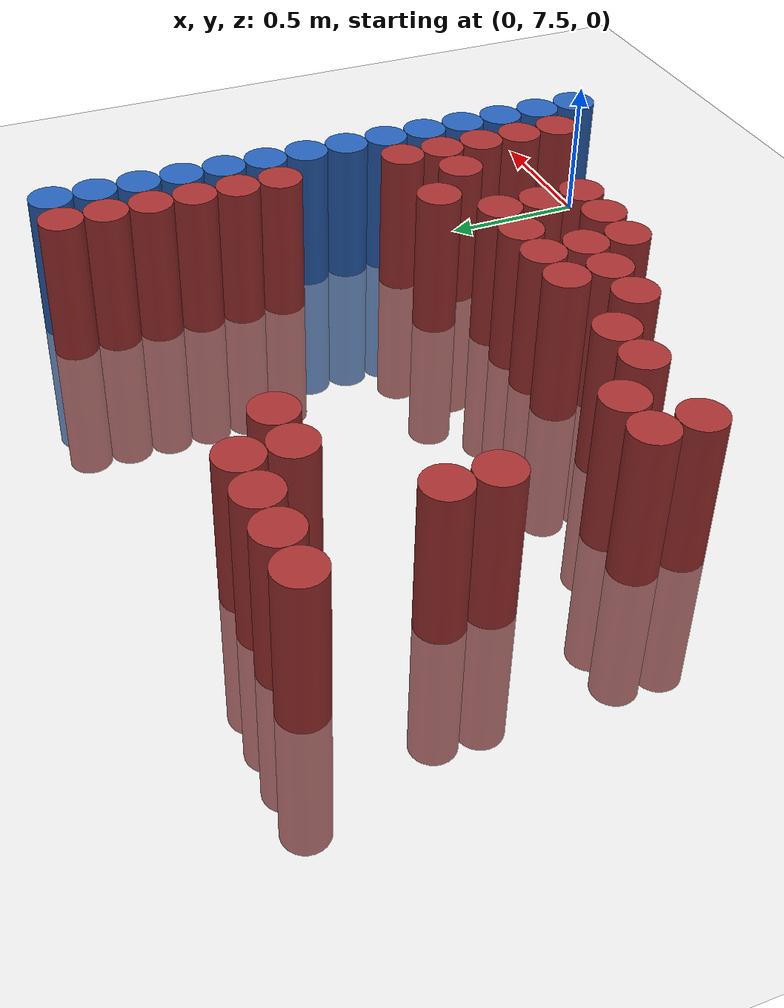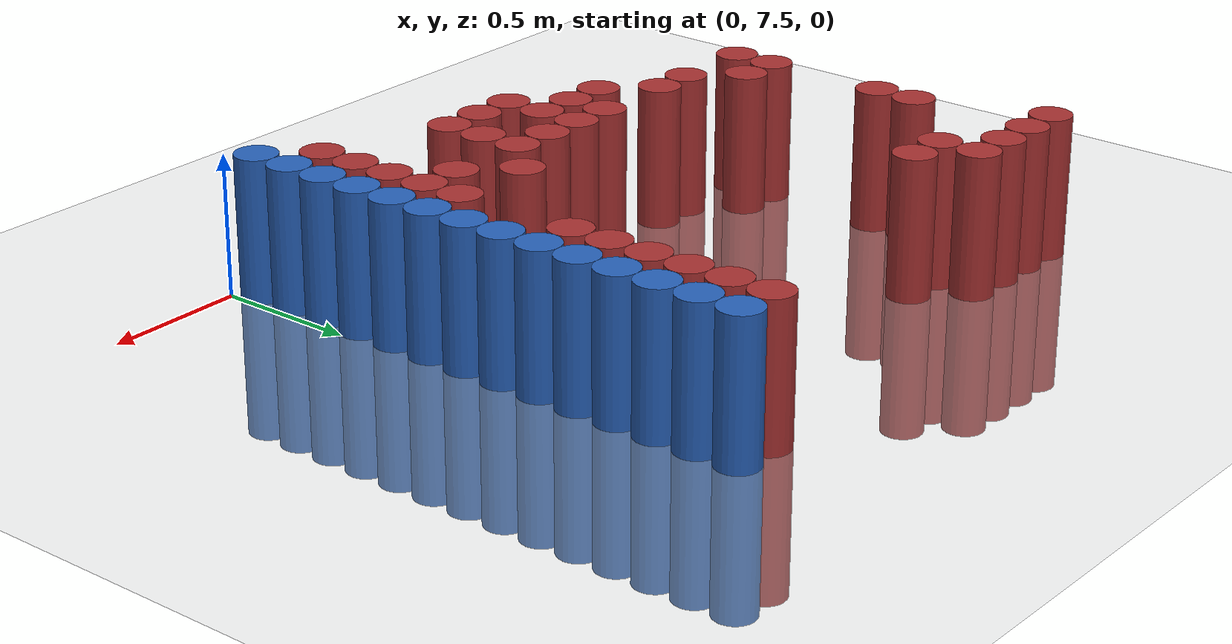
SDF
<sdf version="1.6">
 <world name="default">
  <model name="ground_plane">
   <static>1</static>
   <link name="link">
    <collision name="collision">
     <geometry><plane><normal>0 0 1</normal><size>100 100</size></plane></geometry>
     <surface><friction><ode><mu>100</mu><mu2>50</mu2></ode></friction></surface>
    </collision>
    <visual name="visual">
     <cast_shadows>0</cast_shadows>
     <geometry><plane><normal>0 0 1</normal><size>100 100</size></plane></geometry>
     <material>
      <script><uri>file://media/materials/scripts/gazebo.material</uri><name>Gazebo/Grey</name></script>
     </material>
    </visual>
   </link>
  </model>
  <model name="unit_cylinder_225">
   <static>1</static>
   <pose>-2.025000 9.375000 0.000000 0.000000 0.000000 0.000000</pose>
   <link name="link">
    <inertial>
     <mass>1</mass>
     <inertia><ixx>0.145833</ixx><ixy>0</ixy><ixz>0</ixz><iyy>0.145833</iyy><iyz>0</iyz><izz>0.125</izz></inertia>
    </inertial>
    <collision name="collision">
     <geometry><cylinder><radius>0.075000</radius><length>1</length></cylinder></geometry>
    </collision>
    <visual name="visual">
     <geometry><cylinder><radius>0.075000</radius><length>1</length></cylinder></geometry>
     <material>
      <ambient>0.648000 0.192000 0.192000 1</ambient>
      <diffuse>0.648000 0.192000 0.192000 1</diffuse>
     </material>
     <material>
      <script><name>Gazebo/Grey</name><uri>file://media/materials/scripts/gazebo.material</uri></script>
     </material>
    </visual>
   </link>
  </model>
  <model name="unit_cylinder_228">
   <static>1</static>
   <pose>-1.875000 8.175000 0.000000 0.000000 0.000000 0.000000</pose>
   <link name="link">
    <inertial>
     <mass>1</mass>
     <inertia><ixx>0.145833</ixx><ixy>0</ixy><ixz>0</ixz><iyy>0.145833</iyy><iyz>0</iyz><izz>0.125</izz></inertia>
    </inertial>
    <collision name="collision">
     <geometry><cylinder><radius>0.075000</radius><length>1</length></cylinder></geometry>
    </collision>
    <visual name="visual">
     <geometry><cylinder><radius>0.075000</radius><length>1</length></cylinder></geometry>
     <material>
      <ambient>0.648000 0.192000 0.192000 1</ambient>
      <diffuse>0.648000 0.192000 0.192000 1</diffuse>
     </material>
     <material>
      <script><name>Gazebo/Grey</name><uri>file://media/materials/scripts/gazebo.material</uri></script>
     </material>
    </visual>
   </link>
  </model>
  <model name="unit_cylinder_229">
   <static>1</static>
   <pose>-1.875000 8.325000 0.000000 0.000000 0.000000 0.000000</pose>
   <link name="link">
    <inertial>
     <mass>1</mass>
     <inertia><ixx>0.145833</ixx><ixy>0</ixy><ixz>0</ixz><iyy>0.145833</iyy><iyz>0</iyz><izz>0.125</izz></inertia>
    </inertial>
    <collision name="collision">
     <geometry><cylinder><radius>0.075000</radius><length>1</length></cylinder></geometry>
    </collision>
    <visual name="visual">
     <geometry><cylinder><radius>0.075000</radius><length>1</length></cylinder></geometry>
     <material>
      <ambient>0.648000 0.192000 0.192000 1</ambient>
      <diffuse>0.648000 0.192000 0.192000 1</diffuse>
     </material>
     <material>
      <script><name>Gazebo/Grey</name><uri>file://media/materials/scripts/gazebo.material</uri></script>
     </material>
    </visual>
   </link>
  </model>
  <model name="unit_cylinder_230">
   <static>1</static>
   <pose>-1.875000 8.775000 0.000000 0.000000 0.000000 0.000000</pose>
   <link name="link">
    <inertial>
     <mass>1</mass>
     <inertia><ixx>0.145833</ixx><ixy>0</ixy><ixz>0</ixz><iyy>0.145833</iyy><iyz>0</iyz><izz>0.125</izz></inertia>
    </inertial>
    <collision name="collision">
     <geometry><cylinder><radius>0.075000</radius><length>1</length></cylinder></geometry>
    </collision>
    <visual name="visual">
     <geometry><cylinder><radius>0.075000</radius><length>1</length></cylinder></geometry>
     <material>
      <ambient>0.648000 0.192000 0.192000 1</ambient>
      <diffuse>0.648000 0.192000 0.192000 1</diffuse>
     </material>
     <material>
      <script><name>Gazebo/Grey</name><uri>file://media/materials/scripts/gazebo.material</uri></script>
     </material>
    </visual>
   </link>
  </model>
  <model name="unit_cylinder_231">
   <static>1</static>
   <pose>-1.875000 8.925000 0.000000 0.000000 0.000000 0.000000</pose>
   <link name="link">
    <inertial>
     <mass>1</mass>
     <inertia><ixx>0.145833</ixx><ixy>0</ixy><ixz>0</ixz><iyy>0.145833</iyy><iyz>0</iyz><izz>0.125</izz></inertia>
    </inertial>
    <collision name="collision">
     <geometry><cylinder><radius>0.075000</radius><length>1</length></cylinder></geometry>
    </collision>
    <visual name="visual">
     <geometry><cylinder><radius>0.075000</radius><length>1</length></cylinder></geometry>
     <material>
      <ambient>0.648000 0.192000 0.192000 1</ambient>
      <diffuse>0.648000 0.192000 0.192000 1</diffuse>
     </material>
     <material>
      <script><name>Gazebo/Grey</name><uri>file://media/materials/scripts/gazebo.material</uri></script>
     </material>
    </visual>
   </link>
  </model>
  <model name="unit_cylinder_232">
   <static>1</static>
   <pose>-1.875000 9.375000 0.000000 0.000000 0.000000 0.000000</pose>
   <link name="link">
    <inertial>
     <mass>1</mass>
     <inertia><ixx>0.145833</ixx><ixy>0</ixy><ixz>0</ixz><iyy>0.145833</iyy><iyz>0</iyz><izz>0.125</izz></inertia>
    </inertial>
    <collision name="collision">
     <geometry><cylinder><radius>0.075000</radius><length>1</length></cylinder></geometry>
    </collision>
    <visual name="visual">
     <geometry><cylinder><radius>0.075000</radius><length>1</length></cylinder></geometry>
     <material>
      <ambient>0.648000 0.192000 0.192000 1</ambient>
      <diffuse>0.648000 0.192000 0.192000 1</diffuse>
     </material>
     <material>
      <script><name>Gazebo/Grey</name><uri>file://media/materials/scripts/gazebo.material</uri></script>
     </material>
    </visual>
   </link>
  </model>
  <model name="unit_cylinder_240">
   <static>1</static>
   <pose>-1.725000 8.325000 0.000000 0.000000 0.000000 0.000000</pose>
   <link name="link">
    <inertial>
     <mass>1</mass>
     <inertia><ixx>0.145833</ixx><ixy>0</ixy><ixz>0</ixz><iyy>0.145833</iyy><iyz>0</iyz><izz>0.125</izz></inertia>
    </inertial>
    <collision name="collision">
     <geometry><cylinder><radius>0.075000</radius><length>1</length></cylinder></geometry>
    </collision>
    <visual name="visual">
     <geometry><cylinder><radius>0.075000</radius><length>1</length></cylinder></geometry>
     <material>
      <ambient>0.648000 0.192000 0.192000 1</ambient>
      <diffuse>0.648000 0.192000 0.192000 1</diffuse>
     </material>
     <material>
      <script><name>Gazebo/Grey</name><uri>file://media/materials/scripts/gazebo.material</uri></script>
     </material>
    </visual>
   </link>
  </model>
  <model name="unit_cylinder_241">
   <static>1</static>
   <pose>-1.725000 9.375000 0.000000 0.000000 0.000000 0.000000</pose>
   <link name="link">
    <inertial>
     <mass>1</mass>
     <inertia><ixx>0.145833</ixx><ixy>0</ixy><ixz>0</ixz><iyy>0.145833</iyy><iyz>0</iyz><izz>0.125</izz></inertia>
    </inertial>
    <collision name="collision">
     <geometry><cylinder><radius>0.075000</radius><length>1</length></cylinder></geometry>
    </collision>
    <visual name="visual">
     <geometry><cylinder><radius>0.075000</radius><length>1</length></cylinder></geometry>
     <material>
      <ambient>0.648000 0.192000 0.192000 1</ambient>
      <diffuse>0.648000 0.192000 0.192000 1</diffuse>
     </material>
     <material>
      <script><name>Gazebo/Grey</name><uri>file://media/materials/scripts/gazebo.material</uri></script>
     </material>
    </visual>
   </link>
  </model>
  <model name="unit_cylinder_253">
   <static>1</static>
   <pose>-1.575000 8.175000 0.000000 0.000000 0.000000 0.000000</pose>
   <link name="link">
    <inertial>
     <mass>1</mass>
     <inertia><ixx>0.145833</ixx><ixy>0</ixy><ixz>0</ixz><iyy>0.145833</iyy><iyz>0</iyz><izz>0.125</izz></inertia>
    </inertial>
    <collision name="collision">
     <geometry><cylinder><radius>0.075000</radius><length>1</length></cylinder></geometry>
    </collision>
    <visual name="visual">
     <geometry><cylinder><radius>0.075000</radius><length>1</length></cylinder></geometry>
     <material>
      <ambient>0.648000 0.192000 0.192000 1</ambient>
      <diffuse>0.648000 0.192000 0.192000 1</diffuse>
     </material>
     <material>
      <script><name>Gazebo/Grey</name><uri>file://media/materials/scripts/gazebo.material</uri></script>
     </material>
    </visual>
   </link>
  </model>
  <model name="unit_cylinder_254">
   <static>1</static>
   <pose>-1.575000 9.225000 0.000000 0.000000 0.000000 0.000000</pose>
   <link name="link">
    <inertial>
     <mass>1</mass>
     <inertia><ixx>0.145833</ixx><ixy>0</ixy><ixz>0</ixz><iyy>0.145833</iyy><iyz>0</iyz><izz>0.125</izz></inertia>
    </inertial>
    <collision name="collision">
     <geometry><cylinder><radius>0.075000</radius><length>1</length></cylinder></geometry>
    </collision>
    <visual name="visual">
     <geometry><cylinder><radius>0.075000</radius><length>1</length></cylinder></geometry>
     <material>
      <ambient>0.648000 0.192000 0.192000 1</ambient>
      <diffuse>0.648000 0.192000 0.192000 1</diffuse>
     </material>
     <material>
      <script><name>Gazebo/Grey</name><uri>file://media/materials/scripts/gazebo.material</uri></script>
     </material>
    </visual>
   </link>
  </model>
  <model name="unit_cylinder_255">
   <static>1</static>
   <pose>-1.575000 9.375000 0.000000 0.000000 0.000000 0.000000</pose>
   <link name="link">
    <inertial>
     <mass>1</mass>
     <inertia><ixx>0.145833</ixx><ixy>0</ixy><ixz>0</ixz><iyy>0.145833</iyy><iyz>0</iyz><izz>0.125</izz></inertia>
    </inertial>
    <collision name="collision">
     <geometry><cylinder><radius>0.075000</radius><length>1</length></cylinder></geometry>
    </collision>
    <visual name="visual">
     <geometry><cylinder><radius>0.075000</radius><length>1</length></cylinder></geometry>
     <material>
      <ambient>0.648000 0.192000 0.192000 1</ambient>
      <diffuse>0.648000 0.192000 0.192000 1</diffuse>
     </material>
     <material>
      <script><name>Gazebo/Grey</name><uri>file://media/materials/scripts/gazebo.material</uri></script>
     </material>
    </visual>
   </link>
  </model>
  <model name="unit_cylinder_263">
   <static>1</static>
   <pose>-1.425000 8.175000 0.000000 0.000000 0.000000 0.000000</pose>
   <link name="link">
    <inertial>
     <mass>1</mass>
     <inertia><ixx>0.145833</ixx><ixy>0</ixy><ixz>0</ixz><iyy>0.145833</iyy><iyz>0</iyz><izz>0.125</izz></inertia>
    </inertial>
    <collision name="collision">
     <geometry><cylinder><radius>0.075000</radius><length>1</length></cylinder></geometry>
    </collision>
    <visual name="visual">
     <geometry><cylinder><radius>0.075000</radius><length>1</length></cylinder></geometry>
     <material>
      <ambient>0.648000 0.192000 0.192000 1</ambient>
      <diffuse>0.648000 0.192000 0.192000 1</diffuse>
     </material>
     <material>
      <script><name>Gazebo/Grey</name><uri>file://media/materials/scripts/gazebo.material</uri></script>
     </material>
    </visual>
   </link>
  </model>
  <model name="unit_cylinder_264">
   <static>1</static>
   <pose>-1.425000 9.225000 0.000000 0.000000 0.000000 0.000000</pose>
   <link name="link">
    <inertial>
     <mass>1</mass>
     <inertia><ixx>0.145833</ixx><ixy>0</ixy><ixz>0</ixz><iyy>0.145833</iyy><iyz>0</iyz><izz>0.125</izz></inertia>
    </inertial>
    <collision name="collision">
     <geometry><cylinder><radius>0.075000</radius><length>1</length></cylinder></geometry>
    </collision>
    <visual name="visual">
     <geometry><cylinder><radius>0.075000</radius><length>1</length></cylinder></geometry>
     <material>
      <ambient>0.648000 0.192000 0.192000 1</ambient>
      <diffuse>0.648000 0.192000 0.192000 1</diffuse>
     </material>
     <material>
      <script><name>Gazebo/Grey</name><uri>file://media/materials/scripts/gazebo.material</uri></script>
     </material>
    </visual>
   </link>
  </model>
  <model name="unit_cylinder_267">
   <static>1</static>
   <pose>-1.275000 8.025000 0.000000 0.000000 0.000000 0.000000</pose>
   <link name="link">
    <inertial>
     <mass>1</mass>
     <inertia><ixx>0.145833</ixx><ixy>0</ixy><ixz>0</ixz><iyy>0.145833</iyy><iyz>0</iyz><izz>0.125</izz></inertia>
    </inertial>
    <collision name="collision">
     <geometry><cylinder><radius>0.075000</radius><length>1</length></cylinder></geometry>
    </collision>
    <visual name="visual">
     <geometry><cylinder><radius>0.075000</radius><length>1</length></cylinder></geometry>
     <material>
      <ambient>0.648000 0.192000 0.192000 1</ambient>
      <diffuse>0.648000 0.192000 0.192000 1</diffuse>
     </material>
     <material>
      <script><name>Gazebo/Grey</name><uri>file://media/materials/scripts/gazebo.material</uri></script>
     </material>
    </visual>
   </link>
  </model>
  <model name="unit_cylinder_270">
   <static>1</static>
   <pose>-1.125000 8.025000 0.000000 0.000000 0.000000 0.000000</pose>
   <link name="link">
    <inertial>
     <mass>1</mass>
     <inertia><ixx>0.145833</ixx><ixy>0</ixy><ixz>0</ixz><iyy>0.145833</iyy><iyz>0</iyz><izz>0.125</izz></inertia>
    </inertial>
    <collision name="collision">
     <geometry><cylinder><radius>0.075000</radius><length>1</length></cylinder></geometry>
    </collision>
    <visual name="visual">
     <geometry><cylinder><radius>0.075000</radius><length>1</length></cylinder></geometry>
     <material>
      <ambient>0.648000 0.192000 0.192000 1</ambient>
      <diffuse>0.648000 0.192000 0.192000 1</diffuse>
     </material>
     <material>
      <script><name>Gazebo/Grey</name><uri>file://media/materials/scripts/gazebo.material</uri></script>
     </material>
    </visual>
   </link>
  </model>
  <model name="unit_cylinder_271">
   <static>1</static>
   <pose>-1.125000 8.175000 0.000000 0.000000 0.000000 0.000000</pose>
   <link name="link">
    <inertial>
     <mass>1</mass>
     <inertia><ixx>0.145833</ixx><ixy>0</ixy><ixz>0</ixz><iyy>0.145833</iyy><iyz>0</iyz><izz>0.125</izz></inertia>
    </inertial>
    <collision name="collision">
     <geometry><cylinder><radius>0.075000</radius><length>1</length></cylinder></geometry>
    </collision>
    <visual name="visual">
     <geometry><cylinder><radius>0.075000</radius><length>1</length></cylinder></geometry>
     <material>
      <ambient>0.648000 0.192000 0.192000 1</ambient>
      <diffuse>0.648000 0.192000 0.192000 1</diffuse>
     </material>
     <material>
      <script><name>Gazebo/Grey</name><uri>file://media/materials/scripts/gazebo.material</uri></script>
     </material>
    </visual>
   </link>
  </model>
  <model name="unit_cylinder_273">
   <static>1</static>
   <pose>-0.975000 7.875000 0.000000 0.000000 0.000000 0.000000</pose>
   <link name="link">
    <inertial>
     <mass>1</mass>
     <inertia><ixx>0.145833</ixx><ixy>0</ixy><ixz>0</ixz><iyy>0.145833</iyy><iyz>0</iyz><izz>0.125</izz></inertia>
    </inertial>
    <collision name="collision">
     <geometry><cylinder><radius>0.075000</radius><length>1</length></cylinder></geometry>
    </collision>
    <visual name="visual">
     <geometry><cylinder><radius>0.075000</radius><length>1</length></cylinder></geometry>
     <material>
      <ambient>0.648000 0.192000 0.192000 1</ambient>
      <diffuse>0.648000 0.192000 0.192000 1</diffuse>
     </material>
     <material>
      <script><name>Gazebo/Grey</name><uri>file://media/materials/scripts/gazebo.material</uri></script>
     </material>
    </visual>
   </link>
  </model>
  <model name="unit_cylinder_274">
   <static>1</static>
   <pose>-0.975000 8.025000 0.000000 0.000000 0.000000 0.000000</pose>
   <link name="link">
    <inertial>
     <mass>1</mass>
     <inertia><ixx>0.145833</ixx><ixy>0</ixy><ixz>0</ixz><iyy>0.145833</iyy><iyz>0</iyz><izz>0.125</izz></inertia>
    </inertial>
    <collision name="collision">
     <geometry><cylinder><radius>0.075000</radius><length>1</length></cylinder></geometry>
    </collision>
    <visual name="visual">
     <geometry><cylinder><radius>0.075000</radius><length>1</length></cylinder></geometry>
     <material>
      <ambient>0.648000 0.192000 0.192000 1</ambient>
      <diffuse>0.648000 0.192000 0.192000 1</diffuse>
     </material>
     <material>
      <script><name>Gazebo/Grey</name><uri>file://media/materials/scripts/gazebo.material</uri></script>
     </material>
    </visual>
   </link>
  </model>
  <model name="unit_cylinder_275">
   <static>1</static>
   <pose>-0.975000 8.175000 0.000000 0.000000 0.000000 0.000000</pose>
   <link name="link">
    <inertial>
     <mass>1</mass>
     <inertia><ixx>0.145833</ixx><ixy>0</ixy><ixz>0</ixz><iyy>0.145833</iyy><iyz>0</iyz><izz>0.125</izz></inertia>
    </inertial>
    <collision name="collision">
     <geometry><cylinder><radius>0.075000</radius><length>1</length></cylinder></geometry>
    </collision>
    <visual name="visual">
     <geometry><cylinder><radius>0.075000</radius><length>1</length></cylinder></geometry>
     <material>
      <ambient>0.648000 0.192000 0.192000 1</ambient>
      <diffuse>0.648000 0.192000 0.192000 1</diffuse>
     </material>
     <material>
      <script><name>Gazebo/Grey</name><uri>file://media/materials/scripts/gazebo.material</uri></script>
     </material>
    </visual>
   </link>
  </model>
  <model name="unit_cylinder_280">
   <static>1</static>
   <pose>-0.825000 7.875000 0.000000 0.000000 0.000000 0.000000</pose>
   <link name="link">
    <inertial>
     <mass>1</mass>
     <inertia><ixx>0.145833</ixx><ixy>0</ixy><ixz>0</ixz><iyy>0.145833</iyy><iyz>0</iyz><izz>0.125</izz></inertia>
    </inertial>
    <collision name="collision">
     <geometry><cylinder><radius>0.075000</radius><length>1</length></cylinder></geometry>
    </collision>
    <visual name="visual">
     <geometry><cylinder><radius>0.075000</radius><length>1</length></cylinder></geometry>
     <material>
      <ambient>0.648000 0.192000 0.192000 1</ambient>
      <diffuse>0.648000 0.192000 0.192000 1</diffuse>
     </material>
     <material>
      <script><name>Gazebo/Grey</name><uri>file://media/materials/scripts/gazebo.material</uri></script>
     </material>
    </visual>
   </link>
  </model>
  <model name="unit_cylinder_281">
   <static>1</static>
   <pose>-0.825000 8.175000 0.000000 0.000000 0.000000 0.000000</pose>
   <link name="link">
    <inertial>
     <mass>1</mass>
     <inertia><ixx>0.145833</ixx><ixy>0</ixy><ixz>0</ixz><iyy>0.145833</iyy><iyz>0</iyz><izz>0.125</izz></inertia>
    </inertial>
    <collision name="collision">
     <geometry><cylinder><radius>0.075000</radius><length>1</length></cylinder></geometry>
    </collision>
    <visual name="visual">
     <geometry><cylinder><radius>0.075000</radius><length>1</length></cylinder></geometry>
     <material>
      <ambient>0.648000 0.192000 0.192000 1</ambient>
      <diffuse>0.648000 0.192000 0.192000 1</diffuse>
     </material>
     <material>
      <script><name>Gazebo/Grey</name><uri>file://media/materials/scripts/gazebo.material</uri></script>
     </material>
    </visual>
   </link>
  </model>
  <model name="unit_cylinder_285">
   <static>1</static>
   <pose>-0.675000 7.875000 0.000000 0.000000 0.000000 0.000000</pose>
   <link name="link">
    <inertial>
     <mass>1</mass>
     <inertia><ixx>0.145833</ixx><ixy>0</ixy><ixz>0</ixz><iyy>0.145833</iyy><iyz>0</iyz><izz>0.125</izz></inertia>
    </inertial>
    <collision name="collision">
     <geometry><cylinder><radius>0.075000</radius><length>1</length></cylinder></geometry>
    </collision>
    <visual name="visual">
     <geometry><cylinder><radius>0.075000</radius><length>1</length></cylinder></geometry>
     <material>
      <ambient>0.648000 0.192000 0.192000 1</ambient>
      <diffuse>0.648000 0.192000 0.192000 1</diffuse>
     </material>
     <material>
      <script><name>Gazebo/Grey</name><uri>file://media/materials/scripts/gazebo.material</uri></script>
     </material>
    </visual>
   </link>
  </model>
  <model name="unit_cylinder_286">
   <static>1</static>
   <pose>-0.675000 8.025000 0.000000 0.000000 0.000000 0.000000</pose>
   <link name="link">
    <inertial>
     <mass>1</mass>
     <inertia><ixx>0.145833</ixx><ixy>0</ixy><ixz>0</ixz><iyy>0.145833</iyy><iyz>0</iyz><izz>0.125</izz></inertia>
    </inertial>
    <collision name="collision">
     <geometry><cylinder><radius>0.075000</radius><length>1</length></cylinder></geometry>
    </collision>
    <visual name="visual">
     <geometry><cylinder><radius>0.075000</radius><length>1</length></cylinder></geometry>
     <material>
      <ambient>0.648000 0.192000 0.192000 1</ambient>
      <diffuse>0.648000 0.192000 0.192000 1</diffuse>
     </material>
     <material>
      <script><name>Gazebo/Grey</name><uri>file://media/materials/scripts/gazebo.material</uri></script>
     </material>
    </visual>
   </link>
  </model>
  <model name="unit_cylinder_287">
   <static>1</static>
   <pose>-0.675000 8.175000 0.000000 0.000000 0.000000 0.000000</pose>
   <link name="link">
    <inertial>
     <mass>1</mass>
     <inertia><ixx>0.145833</ixx><ixy>0</ixy><ixz>0</ixz><iyy>0.145833</iyy><iyz>0</iyz><izz>0.125</izz></inertia>
    </inertial>
    <collision name="collision">
     <geometry><cylinder><radius>0.075000</radius><length>1</length></cylinder></geometry>
    </collision>
    <visual name="visual">
     <geometry><cylinder><radius>0.075000</radius><length>1</length></cylinder></geometry>
     <material>
      <ambient>0.648000 0.192000 0.192000 1</ambient>
      <diffuse>0.648000 0.192000 0.192000 1</diffuse>
     </material>
     <material>
      <script><name>Gazebo/Grey</name><uri>file://media/materials/scripts/gazebo.material</uri></script>
     </material>
    </visual>
   </link>
  </model>
  <model name="unit_cylinder_290">
   <static>1</static>
   <pose>-0.525000 8.325000 0.000000 0.000000 0.000000 0.000000</pose>
   <link name="link">
    <inertial>
     <mass>1</mass>
     <inertia><ixx>0.145833</ixx><ixy>0</ixy><ixz>0</ixz><iyy>0.145833</iyy><iyz>0</iyz><izz>0.125</izz></inertia>
    </inertial>
    <collision name="collision">
     <geometry><cylinder><radius>0.075000</radius><length>1</length></cylinder></geometry>
    </collision>
    <visual name="visual">
     <geometry><cylinder><radius>0.075000</radius><length>1</length></cylinder></geometry>
     <material>
      <ambient>0.648000 0.192000 0.192000 1</ambient>
      <diffuse>0.648000 0.192000 0.192000 1</diffuse>
     </material>
     <material>
      <script><name>Gazebo/Grey</name><uri>file://media/materials/scripts/gazebo.material</uri></script>
     </material>
    </visual>
   </link>
  </model>
  <model name="unit_cylinder_301">
   <static>1</static>
   <pose>-0.375000 8.175000 0.000000 0.000000 0.000000 0.000000</pose>
   <link name="link">
    <inertial>
     <mass>1</mass>
     <inertia><ixx>0.145833</ixx><ixy>0</ixy><ixz>0</ixz><iyy>0.145833</iyy><iyz>0</iyz><izz>0.125</izz></inertia>
    </inertial>
    <collision name="collision">
     <geometry><cylinder><radius>0.075000</radius><length>1</length></cylinder></geometry>
    </collision>
    <visual name="visual">
     <geometry><cylinder><radius>0.075000</radius><length>1</length></cylinder></geometry>
     <material>
      <ambient>0.648000 0.192000 0.192000 1</ambient>
      <diffuse>0.648000 0.192000 0.192000 1</diffuse>
     </material>
     <material>
      <script><name>Gazebo/Grey</name><uri>file://media/materials/scripts/gazebo.material</uri></script>
     </material>
    </visual>
   </link>
  </model>
  <model name="unit_cylinder_314">
   <static>1</static>
   <pose>-0.225000 7.725000 0.000000 0.000000 0.000000 0.000000</pose>
   <link name="link">
    <inertial>
     <mass>1</mass>
     <inertia><ixx>0.145833</ixx><ixy>0</ixy><ixz>0</ixz><iyy>0.145833</iyy><iyz>0</iyz><izz>0.125</izz></inertia>
    </inertial>
    <collision name="collision">
     <geometry><cylinder><radius>0.075000</radius><length>1</length></cylinder></geometry>
    </collision>
    <visual name="visual">
     <geometry><cylinder><radius>0.075000</radius><length>1</length></cylinder></geometry>
     <material>
      <ambient>0.648000 0.192000 0.192000 1</ambient>
      <diffuse>0.648000 0.192000 0.192000 1</diffuse>
     </material>
     <material>
      <script><name>Gazebo/Grey</name><uri>file://media/materials/scripts/gazebo.material</uri></script>
     </material>
    </visual>
   </link>
  </model>
  <model name="unit_cylinder_315">
   <static>1</static>
   <pose>-0.225000 7.875000 0.000000 0.000000 0.000000 0.000000</pose>
   <link name="link">
    <inertial>
     <mass>1</mass>
     <inertia><ixx>0.145833</ixx><ixy>0</ixy><ixz>0</ixz><iyy>0.145833</iyy><iyz>0</iyz><izz>0.125</izz></inertia>
    </inertial>
    <collision name="collision">
     <geometry><cylinder><radius>0.075000</radius><length>1</length></cylinder></geometry>
    </collision>
    <visual name="visual">
     <geometry><cylinder><radius>0.075000</radius><length>1</length></cylinder></geometry>
     <material>
      <ambient>0.648000 0.192000 0.192000 1</ambient>
      <diffuse>0.648000 0.192000 0.192000 1</diffuse>
     </material>
     <material>
      <script><name>Gazebo/Grey</name><uri>file://media/materials/scripts/gazebo.material</uri></script>
     </material>
    </visual>
   </link>
  </model>
  <model name="unit_cylinder_316">
   <static>1</static>
   <pose>-0.225000 8.025000 0.000000 0.000000 0.000000 0.000000</pose>
   <link name="link">
    <inertial>
     <mass>1</mass>
     <inertia><ixx>0.145833</ixx><ixy>0</ixy><ixz>0</ixz><iyy>0.145833</iyy><iyz>0</iyz><izz>0.125</izz></inertia>
    </inertial>
    <collision name="collision">
     <geometry><cylinder><radius>0.075000</radius><length>1</length></cylinder></geometry>
    </collision>
    <visual name="visual">
     <geometry><cylinder><radius>0.075000</radius><length>1</length></cylinder></geometry>
     <material>
      <ambient>0.648000 0.192000 0.192000 1</ambient>
      <diffuse>0.648000 0.192000 0.192000 1</diffuse>
     </material>
     <material>
      <script><name>Gazebo/Grey</name><uri>file://media/materials/scripts/gazebo.material</uri></script>
     </material>
    </visual>
   </link>
  </model>
  <model name="unit_cylinder_317">
   <static>1</static>
   <pose>-0.225000 8.175000 0.000000 0.000000 0.000000 0.000000</pose>
   <link name="link">
    <inertial>
     <mass>1</mass>
     <inertia><ixx>0.145833</ixx><ixy>0</ixy><ixz>0</ixz><iyy>0.145833</iyy><iyz>0</iyz><izz>0.125</izz></inertia>
    </inertial>
    <collision name="collision">
     <geometry><cylinder><radius>0.075000</radius><length>1</length></cylinder></geometry>
    </collision>
    <visual name="visual">
     <geometry><cylinder><radius>0.075000</radius><length>1</length></cylinder></geometry>
     <material>
      <ambient>0.648000 0.192000 0.192000 1</ambient>
      <diffuse>0.648000 0.192000 0.192000 1</diffuse>
     </material>
     <material>
      <script><name>Gazebo/Grey</name><uri>file://media/materials/scripts/gazebo.material</uri></script>
     </material>
    </visual>
   </link>
  </model>
  <model name="unit_cylinder_318">
   <static>1</static>
   <pose>-0.225000 8.325000 0.000000 0.000000 0.000000 0.000000</pose>
   <link name="link">
    <inertial>
     <mass>1</mass>
     <inertia><ixx>0.145833</ixx><ixy>0</ixy><ixz>0</ixz><iyy>0.145833</iyy><iyz>0</iyz><izz>0.125</izz></inertia>
    </inertial>
    <collision name="collision">
     <geometry><cylinder><radius>0.075000</radius><length>1</length></cylinder></geometry>
    </collision>
    <visual name="visual">
     <geometry><cylinder><radius>0.075000</radius><length>1</length></cylinder></geometry>
     <material>
      <ambient>0.648000 0.192000 0.192000 1</ambient>
      <diffuse>0.648000 0.192000 0.192000 1</diffuse>
     </material>
     <material>
      <script><name>Gazebo/Grey</name><uri>file://media/materials/scripts/gazebo.material</uri></script>
     </material>
    </visual>
   </link>
  </model>
  <model name="unit_cylinder_319">
   <static>1</static>
   <pose>-0.225000 8.775000 0.000000 0.000000 0.000000 0.000000</pose>
   <link name="link">
    <inertial>
     <mass>1</mass>
     <inertia><ixx>0.145833</ixx><ixy>0</ixy><ixz>0</ixz><iyy>0.145833</iyy><iyz>0</iyz><izz>0.125</izz></inertia>
    </inertial>
    <collision name="collision">
     <geometry><cylinder><radius>0.075000</radius><length>1</length></cylinder></geometry>
    </collision>
    <visual name="visual">
     <geometry><cylinder><radius>0.075000</radius><length>1</length></cylinder></geometry>
     <material>
      <ambient>0.648000 0.192000 0.192000 1</ambient>
      <diffuse>0.648000 0.192000 0.192000 1</diffuse>
     </material>
     <material>
      <script><name>Gazebo/Grey</name><uri>file://media/materials/scripts/gazebo.material</uri></script>
     </material>
    </visual>
   </link>
  </model>
  <model name="unit_cylinder_320">
   <static>1</static>
   <pose>-0.225000 8.925000 0.000000 0.000000 0.000000 0.000000</pose>
   <link name="link">
    <inertial>
     <mass>1</mass>
     <inertia><ixx>0.145833</ixx><ixy>0</ixy><ixz>0</ixz><iyy>0.145833</iyy><iyz>0</iyz><izz>0.125</izz></inertia>
    </inertial>
    <collision name="collision">
     <geometry><cylinder><radius>0.075000</radius><length>1</length></cylinder></geometry>
    </collision>
    <visual name="visual">
     <geometry><cylinder><radius>0.075000</radius><length>1</length></cylinder></geometry>
     <material>
      <ambient>0.648000 0.192000 0.192000 1</ambient>
      <diffuse>0.648000 0.192000 0.192000 1</diffuse>
     </material>
     <material>
      <script><name>Gazebo/Grey</name><uri>file://media/materials/scripts/gazebo.material</uri></script>
     </material>
    </visual>
   </link>
  </model>
  <model name="unit_cylinder_321">
   <static>1</static>
   <pose>-0.225000 9.075000 0.000000 0.000000 0.000000 0.000000</pose>
   <link name="link">
    <inertial>
     <mass>1</mass>
     <inertia><ixx>0.145833</ixx><ixy>0</ixy><ixz>0</ixz><iyy>0.145833</iyy><iyz>0</iyz><izz>0.125</izz></inertia>
    </inertial>
    <collision name="collision">
     <geometry><cylinder><radius>0.075000</radius><length>1</length></cylinder></geometry>
    </collision>
    <visual name="visual">
     <geometry><cylinder><radius>0.075000</radius><length>1</length></cylinder></geometry>
     <material>
      <ambient>0.648000 0.192000 0.192000 1</ambient>
      <diffuse>0.648000 0.192000 0.192000 1</diffuse>
     </material>
     <material>
      <script><name>Gazebo/Grey</name><uri>file://media/materials/scripts/gazebo.material</uri></script>
     </material>
    </visual>
   </link>
  </model>
  <model name="unit_cylinder_322">
   <static>1</static>
   <pose>-0.225000 9.225000 0.000000 0.000000 0.000000 0.000000</pose>
   <link name="link">
    <inertial>
     <mass>1</mass>
     <inertia><ixx>0.145833</ixx><ixy>0</ixy><ixz>0</ixz><iyy>0.145833</iyy><iyz>0</iyz><izz>0.125</izz></inertia>
    </inertial>
    <collision name="collision">
     <geometry><cylinder><radius>0.075000</radius><length>1</length></cylinder></geometry>
    </collision>
    <visual name="visual">
     <geometry><cylinder><radius>0.075000</radius><length>1</length></cylinder></geometry>
     <material>
      <ambient>0.648000 0.192000 0.192000 1</ambient>
      <diffuse>0.648000 0.192000 0.192000 1</diffuse>
     </material>
     <material>
      <script><name>Gazebo/Grey</name><uri>file://media/materials/scripts/gazebo.material</uri></script>
     </material>
    </visual>
   </link>
  </model>
  <model name="unit_cylinder_323">
   <static>1</static>
   <pose>-0.225000 9.375000 0.000000 0.000000 0.000000 0.000000</pose>
   <link name="link">
    <inertial>
     <mass>1</mass>
     <inertia><ixx>0.145833</ixx><ixy>0</ixy><ixz>0</ixz><iyy>0.145833</iyy><iyz>0</iyz><izz>0.125</izz></inertia>
    </inertial>
    <collision name="collision">
     <geometry><cylinder><radius>0.075000</radius><length>1</length></cylinder></geometry>
    </collision>
    <visual name="visual">
     <geometry><cylinder><radius>0.075000</radius><length>1</length></cylinder></geometry>
     <material>
      <ambient>0.648000 0.192000 0.192000 1</ambient>
      <diffuse>0.648000 0.192000 0.192000 1</diffuse>
     </material>
     <material>
      <script><name>Gazebo/Grey</name><uri>file://media/materials/scripts/gazebo.material</uri></script>
     </material>
    </visual>
   </link>
  </model>
  <model name="unit_cylinder_324">
   <static>1</static>
   <pose>-0.225000 9.525000 0.000000 0.000000 0.000000 0.000000</pose>
   <link name="link">
    <inertial>
     <mass>1</mass>
     <inertia><ixx>0.145833</ixx><ixy>0</ixy><ixz>0</ixz><iyy>0.145833</iyy><iyz>0</iyz><izz>0.125</izz></inertia>
    </inertial>
    <collision name="collision">
     <geometry><cylinder><radius>0.075000</radius><length>1</length></cylinder></geometry>
    </collision>
    <visual name="visual">
     <geometry><cylinder><radius>0.075000</radius><length>1</length></cylinder></geometry>
     <material>
      <ambient>0.648000 0.192000 0.192000 1</ambient>
      <diffuse>0.648000 0.192000 0.192000 1</diffuse>
     </material>
     <material>
      <script><name>Gazebo/Grey</name><uri>file://media/materials/scripts/gazebo.material</uri></script>
     </material>
    </visual>
   </link>
  </model>
  <model name="unit_cylinder_341">
   <static>1</static>
   <pose>-0.075000 7.575000 0.000000 0.000000 0.000000 0.000000</pose>
   <link name="link">
    <inertial>
     <mass>1</mass>
     <inertia><ixx>0.145833</ixx><ixy>0</ixy><ixz>0</ixz><iyy>0.145833</iyy><iyz>0</iyz><izz>0.125</izz></inertia>
    </inertial>
    <collision name="collision">
     <geometry><cylinder><radius>0.075000</radius><length>1</length></cylinder></geometry>
    </collision>
    <visual name="visual">
     <geometry><cylinder><radius>0.075000</radius><length>1</length></cylinder></geometry>
     <material>
      <ambient>0.152000 0.379000 0.720000 1</ambient>
      <diffuse>0.152000 0.379000 0.720000 1</diffuse>
     </material>
     <material>
      <script><name>Gazebo/Grey</name><uri>file://media/materials/scripts/gazebo.material</uri></script>
     </material>
    </visual>
   </link>
  </model>
  <model name="unit_cylinder_342">
   <static>1</static>
   <pose>-0.075000 7.725000 0.000000 0.000000 0.000000 0.000000</pose>
   <link name="link">
    <inertial>
     <mass>1</mass>
     <inertia><ixx>0.145833</ixx><ixy>0</ixy><ixz>0</ixz><iyy>0.145833</iyy><iyz>0</iyz><izz>0.125</izz></inertia>
    </inertial>
    <collision name="collision">
     <geometry><cylinder><radius>0.075000</radius><length>1</length></cylinder></geometry>
    </collision>
    <visual name="visual">
     <geometry><cylinder><radius>0.075000</radius><length>1</length></cylinder></geometry>
     <material>
      <ambient>0.152000 0.379000 0.720000 1</ambient>
      <diffuse>0.152000 0.379000 0.720000 1</diffuse>
     </material>
     <material>
      <script><name>Gazebo/Grey</name><uri>file://media/materials/scripts/gazebo.material</uri></script>
     </material>
    </visual>
   </link>
  </model>
  <model name="unit_cylinder_343">
   <static>1</static>
   <pose>-0.075000 7.875000 0.000000 0.000000 0.000000 0.000000</pose>
   <link name="link">
    <inertial>
     <mass>1</mass>
     <inertia><ixx>0.145833</ixx><ixy>0</ixy><ixz>0</ixz><iyy>0.145833</iyy><iyz>0</iyz><izz>0.125</izz></inertia>
    </inertial>
    <collision name="collision">
     <geometry><cylinder><radius>0.075000</radius><length>1</length></cylinder></geometry>
    </collision>
    <visual name="visual">
     <geometry><cylinder><radius>0.075000</radius><length>1</length></cylinder></geometry>
     <material>
      <ambient>0.152000 0.379000 0.720000 1</ambient>
      <diffuse>0.152000 0.379000 0.720000 1</diffuse>
     </material>
     <material>
      <script><name>Gazebo/Grey</name><uri>file://media/materials/scripts/gazebo.material</uri></script>
     </material>
    </visual>
   </link>
  </model>
  <model name="unit_cylinder_344">
   <static>1</static>
   <pose>-0.075000 8.025000 0.000000 0.000000 0.000000 0.000000</pose>
   <link name="link">
    <inertial>
     <mass>1</mass>
     <inertia><ixx>0.145833</ixx><ixy>0</ixy><ixz>0</ixz><iyy>0.145833</iyy><iyz>0</iyz><izz>0.125</izz></inertia>
    </inertial>
    <collision name="collision">
     <geometry><cylinder><radius>0.075000</radius><length>1</length></cylinder></geometry>
    </collision>
    <visual name="visual">
     <geometry><cylinder><radius>0.075000</radius><length>1</length></cylinder></geometry>
     <material>
      <ambient>0.152000 0.379000 0.720000 1</ambient>
      <diffuse>0.152000 0.379000 0.720000 1</diffuse>
     </material>
     <material>
      <script><name>Gazebo/Grey</name><uri>file://media/materials/scripts/gazebo.material</uri></script>
     </material>
    </visual>
   </link>
  </model>
  <model name="unit_cylinder_345">
   <static>1</static>
   <pose>-0.075000 8.175000 0.000000 0.000000 0.000000 0.000000</pose>
   <link name="link">
    <inertial>
     <mass>1</mass>
     <inertia><ixx>0.145833</ixx><ixy>0</ixy><ixz>0</ixz><iyy>0.145833</iyy><iyz>0</iyz><izz>0.125</izz></inertia>
    </inertial>
    <collision name="collision">
     <geometry><cylinder><radius>0.075000</radius><length>1</length></cylinder></geometry>
    </collision>
    <visual name="visual">
     <geometry><cylinder><radius>0.075000</radius><length>1</length></cylinder></geometry>
     <material>
      <ambient>0.152000 0.379000 0.720000 1</ambient>
      <diffuse>0.152000 0.379000 0.720000 1</diffuse>
     </material>
     <material>
      <script><name>Gazebo/Grey</name><uri>file://media/materials/scripts/gazebo.material</uri></script>
     </material>
    </visual>
   </link>
  </model>
  <model name="unit_cylinder_346">
   <static>1</static>
   <pose>-0.075000 8.325000 0.000000 0.000000 0.000000 0.000000</pose>
   <link name="link">
    <inertial>
     <mass>1</mass>
     <inertia><ixx>0.145833</ixx><ixy>0</ixy><ixz>0</ixz><iyy>0.145833</iyy><iyz>0</iyz><izz>0.125</izz></inertia>
    </inertial>
    <collision name="collision">
     <geometry><cylinder><radius>0.075000</radius><length>1</length></cylinder></geometry>
    </collision>
    <visual name="visual">
     <geometry><cylinder><radius>0.075000</radius><length>1</length></cylinder></geometry>
     <material>
      <ambient>0.152000 0.379000 0.720000 1</ambient>
      <diffuse>0.152000 0.379000 0.720000 1</diffuse>
     </material>
     <material>
      <script><name>Gazebo/Grey</name><uri>file://media/materials/scripts/gazebo.material</uri></script>
     </material>
    </visual>
   </link>
  </model>
  <model name="unit_cylinder_347">
   <static>1</static>
   <pose>-0.075000 8.475000 0.000000 0.000000 0.000000 0.000000</pose>
   <link name="link">
    <inertial>
     <mass>1</mass>
     <inertia><ixx>0.145833</ixx><ixy>0</ixy><ixz>0</ixz><iyy>0.145833</iyy><iyz>0</iyz><izz>0.125</izz></inertia>
    </inertial>
    <collision name="collision">
     <geometry><cylinder><radius>0.075000</radius><length>1</length></cylinder></geometry>
    </collision>
    <visual name="visual">
     <geometry><cylinder><radius>0.075000</radius><length>1</length></cylinder></geometry>
     <material>
      <ambient>0.152000 0.379000 0.720000 1</ambient>
      <diffuse>0.152000 0.379000 0.720000 1</diffuse>
     </material>
     <material>
      <script><name>Gazebo/Grey</name><uri>file://media/materials/scripts/gazebo.material</uri></script>
     </material>
    </visual>
   </link>
  </model>
  <model name="unit_cylinder_348">
   <static>1</static>
   <pose>-0.075000 8.625000 0.000000 0.000000 0.000000 0.000000</pose>
   <link name="link">
    <inertial>
     <mass>1</mass>
     <inertia><ixx>0.145833</ixx><ixy>0</ixy><ixz>0</ixz><iyy>0.145833</iyy><iyz>0</iyz><izz>0.125</izz></inertia>
    </inertial>
    <collision name="collision">
     <geometry><cylinder><radius>0.075000</radius><length>1</length></cylinder></geometry>
    </collision>
    <visual name="visual">
     <geometry><cylinder><radius>0.075000</radius><length>1</length></cylinder></geometry>
     <material>
      <ambient>0.152000 0.379000 0.720000 1</ambient>
      <diffuse>0.152000 0.379000 0.720000 1</diffuse>
     </material>
     <material>
      <script><name>Gazebo/Grey</name><uri>file://media/materials/scripts/gazebo.material</uri></script>
     </material>
    </visual>
   </link>
  </model>
  <model name="unit_cylinder_349">
   <static>1</static>
   <pose>-0.075000 8.775000 0.000000 0.000000 0.000000 0.000000</pose>
   <link name="link">
    <inertial>
     <mass>1</mass>
     <inertia><ixx>0.145833</ixx><ixy>0</ixy><ixz>0</ixz><iyy>0.145833</iyy><iyz>0</iyz><izz>0.125</izz></inertia>
    </inertial>
    <collision name="collision">
     <geometry><cylinder><radius>0.075000</radius><length>1</length></cylinder></geometry>
    </collision>
    <visual name="visual">
     <geometry><cylinder><radius>0.075000</radius><length>1</length></cylinder></geometry>
     <material>
      <ambient>0.152000 0.379000 0.720000 1</ambient>
      <diffuse>0.152000 0.379000 0.720000 1</diffuse>
     </material>
     <material>
      <script><name>Gazebo/Grey</name><uri>file://media/materials/scripts/gazebo.material</uri></script>
     </material>
    </visual>
   </link>
  </model>
  <model name="unit_cylinder_350">
   <static>1</static>
   <pose>-0.075000 8.925000 0.000000 0.000000 0.000000 0.000000</pose>
   <link name="link">
    <inertial>
     <mass>1</mass>
     <inertia><ixx>0.145833</ixx><ixy>0</ixy><ixz>0</ixz><iyy>0.145833</iyy><iyz>0</iyz><izz>0.125</izz></inertia>
    </inertial>
    <collision name="collision">
     <geometry><cylinder><radius>0.075000</radius><length>1</length></cylinder></geometry>
    </collision>
    <visual name="visual">
     <geometry><cylinder><radius>0.075000</radius><length>1</length></cylinder></geometry>
     <material>
      <ambient>0.152000 0.379000 0.720000 1</ambient>
      <diffuse>0.152000 0.379000 0.720000 1</diffuse>
     </material>
     <material>
      <script><name>Gazebo/Grey</name><uri>file://media/materials/scripts/gazebo.material</uri></script>
     </material>
    </visual>
   </link>
  </model>
  <model name="unit_cylinder_351">
   <static>1</static>
   <pose>-0.075000 9.075000 0.000000 0.000000 0.000000 0.000000</pose>
   <link name="link">
    <inertial>
     <mass>1</mass>
     <inertia><ixx>0.145833</ixx><ixy>0</ixy><ixz>0</ixz><iyy>0.145833</iyy><iyz>0</iyz><izz>0.125</izz></inertia>
    </inertial>
    <collision name="collision">
     <geometry><cylinder><radius>0.075000</radius><length>1</length></cylinder></geometry>
    </collision>
    <visual name="visual">
     <geometry><cylinder><radius>0.075000</radius><length>1</length></cylinder></geometry>
     <material>
      <ambient>0.152000 0.379000 0.720000 1</ambient>
      <diffuse>0.152000 0.379000 0.720000 1</diffuse>
     </material>
     <material>
      <script><name>Gazebo/Grey</name><uri>file://media/materials/scripts/gazebo.material</uri></script>
     </material>
    </visual>
   </link>
  </model>
  <model name="unit_cylinder_352">
   <static>1</static>
   <pose>-0.075000 9.225000 0.000000 0.000000 0.000000 0.000000</pose>
   <link name="link">
    <inertial>
     <mass>1</mass>
     <inertia><ixx>0.145833</ixx><ixy>0</ixy><ixz>0</ixz><iyy>0.145833</iyy><iyz>0</iyz><izz>0.125</izz></inertia>
    </inertial>
    <collision name="collision">
     <geometry><cylinder><radius>0.075000</radius><length>1</length></cylinder></geometry>
    </collision>
    <visual name="visual">
     <geometry><cylinder><radius>0.075000</radius><length>1</length></cylinder></geometry>
     <material>
      <ambient>0.152000 0.379000 0.720000 1</ambient>
      <diffuse>0.152000 0.379000 0.720000 1</diffuse>
     </material>
     <material>
      <script><name>Gazebo/Grey</name><uri>file://media/materials/scripts/gazebo.material</uri></script>
     </material>
    </visual>
   </link>
  </model>
  <model name="unit_cylinder_353">
   <static>1</static>
   <pose>-0.075000 9.375000 0.000000 0.000000 0.000000 0.000000</pose>
   <link name="link">
    <inertial>
     <mass>1</mass>
     <inertia><ixx>0.145833</ixx><ixy>0</ixy><ixz>0</ixz><iyy>0.145833</iyy><iyz>0</iyz><izz>0.125</izz></inertia>
    </inertial>
    <collision name="collision">
     <geometry><cylinder><radius>0.075000</radius><length>1</length></cylinder></geometry>
    </collision>
    <visual name="visual">
     <geometry><cylinder><radius>0.075000</radius><length>1</length></cylinder></geometry>
     <material>
      <ambient>0.152000 0.379000 0.720000 1</ambient>
      <diffuse>0.152000 0.379000 0.720000 1</diffuse>
     </material>
     <material>
      <script><name>Gazebo/Grey</name><uri>file://media/materials/scripts/gazebo.material</uri></script>
     </material>
    </visual>
   </link>
  </model>
  <model name="unit_cylinder_354">
   <static>1</static>
   <pose>-0.075000 9.525000 0.000000 0.000000 0.000000 0.000000</pose>
   <link name="link">
    <inertial>
     <mass>1</mass>
     <inertia><ixx>0.145833</ixx><ixy>0</ixy><ixz>0</ixz><iyy>0.145833</iyy><iyz>0</iyz><izz>0.125</izz></inertia>
    </inertial>
    <collision name="collision">
     <geometry><cylinder><radius>0.075000</radius><length>1</length></cylinder></geometry>
    </collision>
    <visual name="visual">
     <geometry><cylinder><radius>0.075000</radius><length>1</length></cylinder></geometry>
     <material>
      <ambient>0.152000 0.379000 0.720000 1</ambient>
      <diffuse>0.152000 0.379000 0.720000 1</diffuse>
     </material>
     <material>
      <script><name>Gazebo/Grey</name><uri>file://media/materials/scripts/gazebo.material</uri></script>
     </material>
    </visual>
   </link>
  </model>
 </world>
</sdf>
